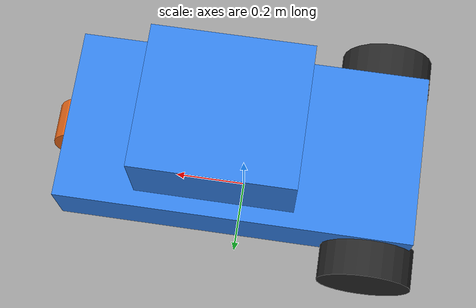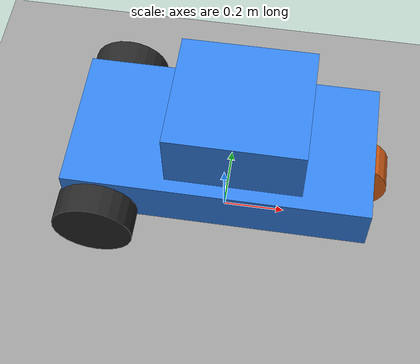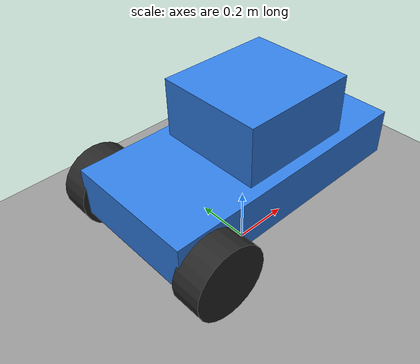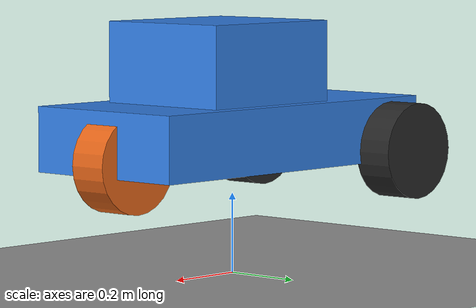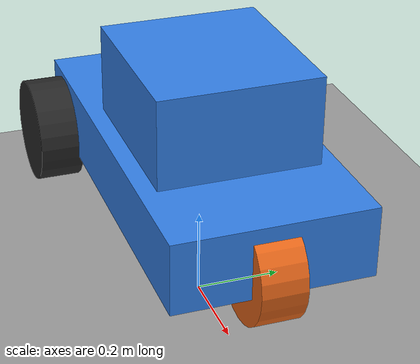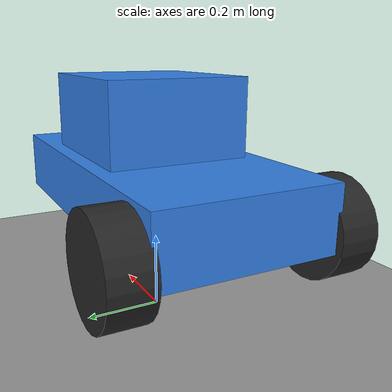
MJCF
<mujoco model="three_wheeler">
  <option timestep="0.005" gravity="0 0 -9.81"/>

  <asset>
    <texture name="grid" type="2d" builtin="checker" rgb1="0.7 0.7 0.7" rgb2="0.5 0.5 0.5" width="512" height="512"/>
    <material name="grid_mat" texture="grid" texrepeat="4 4" reflectance="0.2"/>
    <material name="body_mat" rgba="0.2 0.5 0.9 1"/>
    <material name="wheel_mat" rgba="0.15 0.15 0.15 1"/>
    <material name="front_mat" rgba="0.9 0.4 0.1 1"/>
  </asset>

  <worldbody>
    <light name="sun" pos="0 0 10" dir="0 0 -1" diffuse="1 1 1" specular="0.3 0.3 0.3" castshadow="true"/>
    <geom name="floor" type="plane" size="50 50 0.1" material="grid_mat" friction="1.2 0.05 0.05"/>

    <body name="chassis" pos="0 0 0.35">
      <freejoint name="root"/>
      <geom name="chassis_body" type="box" size="0.45 0.22 0.08" material="body_mat" mass="6"/>
      <geom name="cabin" type="box" size="0.2 0.18 0.1" pos="0.05 0 0.18" material="body_mat" mass="1"/>

      <!-- Rear Left Wheel -->
      <body name="rear_left_wheel" pos="-0.35 0.26 -0.05">
        <joint name="rear_left_spin" type="hinge" axis="0 1 0" limited="false"/>
        <geom name="rear_left_geom" type="cylinder" size="0.12 0.05" euler="90 0 0" material="wheel_mat" mass="0.8" friction="1.5 0.05 0.05"/>
      </body>

      <!-- Rear Right Wheel -->
      <body name="rear_right_wheel" pos="-0.35 -0.26 -0.05">
        <joint name="rear_right_spin" type="hinge" axis="0 1 0" limited="false"/>
        <geom name="rear_right_geom" type="cylinder" size="0.12 0.05" euler="90 0 0" material="wheel_mat" mass="0.8" friction="1.5 0.05 0.05"/>
      </body>

      <!-- Front Wheel (steering + drive) -->
      <body name="front_steer_body" pos="0.38 0 -0.05">
        <joint name="front_steer" type="hinge" axis="0 0 1" range="-0.6 0.6"/>
        <body name="front_wheel_body" pos="0 0 0">
          <joint name="front_spin" type="hinge" axis="0 1 0" limited="false"/>
          <geom name="front_geom" type="cylinder" size="0.12 0.05" euler="90 0 0" material="front_mat" mass="0.8" friction="1.5 0.05 0.05"/>
        </body>
      </body>
    </body>
  </worldbody>

  <actuator>
    <velocity name="drive_rear_left"  joint="rear_left_spin"  kv="8" gear="1"/>
    <velocity name="drive_rear_right" joint="rear_right_spin" kv="8" gear="1"/>
    <velocity name="drive_front"      joint="front_spin"      kv="8" gear="1"/>
    <position name="steer_front"      joint="front_steer"     kp="30" gear="1"/>
  </actuator>

</mujoco>
